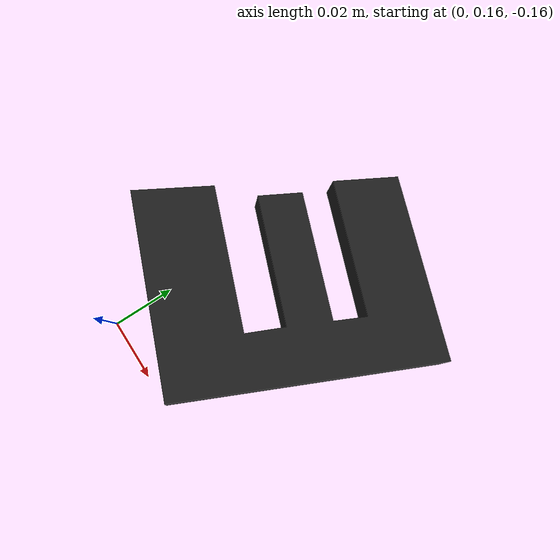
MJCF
<mujoco model="original-4">
  <default>
    <default class="visual">
      <geom group="2" type="mesh" contype="0" conaffinity="0"/>
    </default>
    <default class="collision">
      <geom group="3" type="mesh"/>
    </default>
  </default>
  <asset>
    <material name="material_0_0" specular="0.06666666666666667" shininess="0.03" rgba="0.11372549019607843 0.11372549019607843 0.11372549019607843 1"/>
    <mesh file="original-4.obj"/>
  </asset>
  <worldbody>
    <body name="original-4">
      <geom material="material_0_0" mesh="original-4" class="visual"/>
      <geom mesh="original-4" class="collision"/>
    </body>
  </worldbody>
</mujoco>
